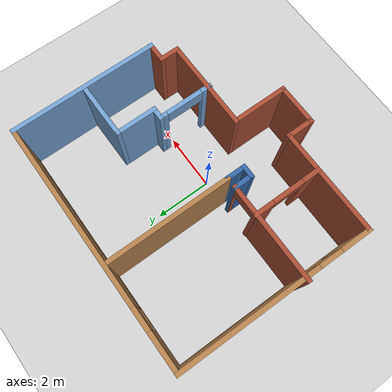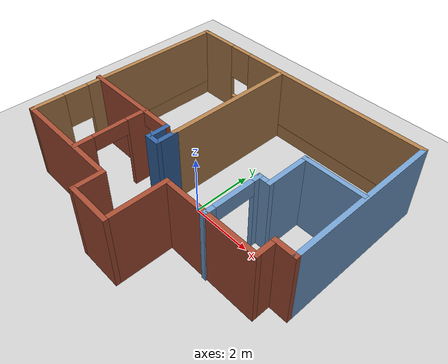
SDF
<sdf version="1.6">
 <world name="default">
  <light name="sun" type="directional">
   <pose>0 0 10 0 -0 0</pose>
   <diffuse>0.8 0.8 0.8 1</diffuse>
   <specular>0.2 0.2 0.2 1</specular>
   <attenuation>
    <range>1000</range>
    <constant>0.9</constant>
    <linear>0.01</linear>
    <quadratic>0.001</quadratic>
   </attenuation>
   <direction>-0.5 0.1 -0.9</direction>
  </light>
  <model name="ground_plane">
   <static>1</static>
   <link name="link">
    <collision name="collision">
     <geometry><plane><normal>0 0 1</normal><size>100 100</size></plane></geometry>
     <surface><friction><ode><mu>100</mu><mu2>50</mu2></ode></friction></surface>
    </collision>
    <visual name="visual">
     <cast_shadows>0</cast_shadows>
     <geometry><plane><normal>0 0 1</normal><size>100 100</size></plane></geometry>
     <material>
      <script><uri>file://media/materials/scripts/gazebo.material</uri><name>Gazebo/Grey</name></script>
     </material>
    </visual>
   </link>
  </model>
  <gravity>0 0 -9.8</gravity>
  <magnetic_field>6e-06 2.3e-05 -4.2e-05</magnetic_field>
  <atmosphere type="adiabatic"/>
  <physics name="default_physics" default="0" type="ode">
   <max_step_size>0.001</max_step_size>
   <real_time_factor>1</real_time_factor>
   <real_time_update_rate>1000</real_time_update_rate>
  </physics>
  <scene><ambient>0.4 0.4 0.4 1</ambient><background>0.7 0.7 0.7 1</background><shadows>1</shadows></scene>
  <audio><device>default</device></audio>
  <spherical_coordinates>
   <surface_model>EARTH_WGS84</surface_model>
   <latitude_deg>0</latitude_deg>
   <longitude_deg>0</longitude_deg>
   <elevation>0</elevation>
   <heading_deg>0</heading_deg>
  </spherical_coordinates>
  <model name="myworld">
   <pose>-0.172435 0.569542 0 0 -0 0</pose>
   <link name="Wall_0">
    <pose>0.068943 3.77472 0 0 -0 0</pose>
    <visual name="Wall_0_Visual_0">
     <pose>-3.66779 0 1.25 0 -0 0</pose>
     <geometry><box><size>1.41442 0.15 2.5</size></box></geometry>
     <material>
      <script><uri>file://media/materials/scripts/gazebo.material</uri><name>Gazebo/Wood</name></script>
      <ambient>1 1 1 1</ambient>
     </material>
     <meta><layer>0</layer></meta>
    </visual>
    <collision name="Wall_0_Collision_0">
     <geometry><box><size>1.41442 0.15 2.5</size></box></geometry>
     <pose>-3.66779 0 1.25 0 -0 0</pose>
    </collision>
    <visual name="Wall_0_Visual_1">
     <pose>0.707209 0 0.25 0 -0 0</pose>
     <geometry><box><size>7.33558 0.15 0.5</size></box></geometry>
     <material>
      <script><uri>file://media/materials/scripts/gazebo.material</uri><name>Gazebo/Wood</name></script>
      <ambient>1 1 1 1</ambient>
     </material>
     <meta><layer>0</layer></meta>
    </visual>
    <collision name="Wall_0_Collision_1">
     <geometry><box><size>7.33558 0.15 0.5</size></box></geometry>
     <pose>0.707209 0 0.25 0 -0 0</pose>
    </collision>
    <visual name="Wall_0_Visual_2">
     <pose>1.10721 0 1.5 0 -0 0</pose>
     <geometry><box><size>6.53558 0.15 2</size></box></geometry>
     <material>
      <script><uri>file://media/materials/scripts/gazebo.material</uri><name>Gazebo/Wood</name></script>
      <ambient>1 1 1 1</ambient>
     </material>
     <meta><layer>0</layer></meta>
    </visual>
    <collision name="Wall_0_Collision_2">
     <geometry><box><size>6.53558 0.15 2</size></box></geometry>
     <pose>1.10721 0 1.5 0 -0 0</pose>
    </collision>
    <visual name="Wall_0_Visual_3">
     <pose>-2.56058 0 1.9 0 -0 0</pose>
     <geometry><box><size>0.8 0.15 1.2</size></box></geometry>
     <material>
      <script><uri>file://media/materials/scripts/gazebo.material</uri><name>Gazebo/Wood</name></script>
      <ambient>1 1 1 1</ambient>
     </material>
     <meta><layer>0</layer></meta>
    </visual>
    <collision name="Wall_0_Collision_3">
     <geometry><box><size>0.8 0.15 1.2</size></box></geometry>
     <pose>-2.56058 0 1.9 0 -0 0</pose>
    </collision>
   </link>
   <link name="Wall_11">
    <collision name="Wall_11_Collision">
     <geometry><box><size>4.5 0.15 2.5</size></box></geometry>
     <pose>0 0 1.25 0 -0 0</pose>
    </collision>
    <visual name="Wall_11_Visual">
     <pose>0 0 1.25 0 -0 0</pose>
     <geometry><box><size>4.5 0.15 2.5</size></box></geometry>
     <material>
      <script><uri>file://media/materials/scripts/gazebo.material</uri><name>Gazebo/Wood</name></script>
      <ambient>1 1 1 1</ambient>
     </material>
     <meta><layer>0</layer></meta>
    </visual>
    <pose>-0.668944 1.57659 0 0 -0 -1.5708</pose>
   </link>
   <link name="Wall_12">
    <collision name="Wall_12_Collision">
     <geometry><box><size>0.75 0.15 2.5</size></box></geometry>
     <pose>0 0 1.25 0 -0 0</pose>
    </collision>
    <visual name="Wall_12_Visual">
     <pose>0 0 1.25 0 -0 0</pose>
     <geometry><box><size>0.75 0.15 2.5</size></box></geometry>
     <material>
      <script><uri>file://media/materials/scripts/gazebo.material</uri><name>Gazebo/Grey</name></script>
      <ambient>0.203922 0.396078 0.643137 1</ambient>
     </material>
     <meta><layer>0</layer></meta>
    </visual>
    <pose>-0.668944 -0.898409 0 0 -0 -1.5708</pose>
   </link>
   <link name="Wall_13">
    <collision name="Wall_13_Collision">
     <geometry><box><size>0.5 0.15 2.5</size></box></geometry>
     <pose>0 0 1.25 0 -0 0</pose>
    </collision>
    <visual name="Wall_13_Visual">
     <pose>0 0 1.25 0 -0 0</pose>
     <geometry><box><size>0.5 0.15 2.5</size></box></geometry>
     <material>
      <script><uri>file://media/materials/scripts/gazebo.material</uri><name>Gazebo/Grey</name></script>
      <ambient>0.203922 0.396078 0.643137 1</ambient>
     </material>
     <meta><layer>0</layer></meta>
    </visual>
    <pose>-0.843944 -1.19841 0 0 -0 3.14159</pose>
   </link>
   <link name="Wall_14">
    <collision name="Wall_14_Collision">
     <geometry><box><size>0.75 0.15 2.5</size></box></geometry>
     <pose>0 0 1.25 0 -0 0</pose>
    </collision>
    <visual name="Wall_14_Visual">
     <pose>0 0 1.25 0 -0 0</pose>
     <geometry><box><size>0.75 0.15 2.5</size></box></geometry>
     <material>
      <script><uri>file://media/materials/scripts/gazebo.material</uri><name>Gazebo/Grey</name></script>
      <ambient>0.203922 0.396078 0.643137 1</ambient>
     </material>
     <meta><layer>0</layer></meta>
    </visual>
    <pose>-1.01894 -0.898409 0 0 -0 1.5708</pose>
   </link>
   <link name="Wall_15">
    <pose>-2.69394 -0.598409 0 0 -0 3.14159</pose>
    <visual name="Wall_15_Visual_0">
     <pose>-1.67182 0 1.25 0 -0 0</pose>
     <geometry><box><size>0.156369 0.15 2.5</size></box></geometry>
     <material>
      <script><uri>file://media/materials/scripts/gazebo.material</uri><name>Gazebo/Bricks</name></script>
      <ambient>1 1 1 1</ambient>
     </material>
     <meta><layer>0</layer></meta>
    </visual>
    <collision name="Wall_15_Collision_0">
     <geometry><box><size>0.156369 0.15 2.5</size></box></geometry>
     <pose>-1.67182 0 1.25 0 -0 0</pose>
    </collision>
    <visual name="Wall_15_Visual_1">
     <pose>0.528185 0 1.25 0 -0 0</pose>
     <geometry><box><size>2.44363 0.15 2.5</size></box></geometry>
     <material>
      <script><uri>file://media/materials/scripts/gazebo.material</uri><name>Gazebo/Bricks</name></script>
      <ambient>1 1 1 1</ambient>
     </material>
     <meta><layer>0</layer></meta>
    </visual>
    <collision name="Wall_15_Collision_1">
     <geometry><box><size>2.44363 0.15 2.5</size></box></geometry>
     <pose>0.528185 0 1.25 0 -0 0</pose>
    </collision>
    <visual name="Wall_15_Visual_2">
     <pose>-1.14363 0 2.25 0 -0 0</pose>
     <geometry><box><size>0.9 0.15 0.5</size></box></geometry>
     <material>
      <script><uri>file://media/materials/scripts/gazebo.material</uri><name>Gazebo/Bricks</name></script>
      <ambient>1 1 1 1</ambient>
     </material>
     <meta><layer>0</layer></meta>
    </visual>
    <collision name="Wall_15_Collision_2">
     <geometry><box><size>0.9 0.15 0.5</size></box></geometry>
     <pose>-1.14363 0 2.25 0 -0 0</pose>
    </collision>
   </link>
   <link name="Wall_17">
    <pose>-2.03365 -1.74883 0 0 -0 -1.5708</pose>
    <visual name="Wall_17_Visual_0">
     <pose>-0.882609 0 1.25 0 -0 0</pose>
     <geometry><box><size>0.734782 0.15 2.5</size></box></geometry>
     <material>
      <script><uri>file://media/materials/scripts/gazebo.material</uri><name>Gazebo/Bricks</name></script>
      <ambient>1 1 1 1</ambient>
     </material>
     <meta><layer>0</layer></meta>
    </visual>
    <collision name="Wall_17_Collision_0">
     <geometry><box><size>0.734782 0.15 2.5</size></box></geometry>
     <pose>-0.882609 0 1.25 0 -0 0</pose>
    </collision>
    <visual name="Wall_17_Visual_1">
     <pose>0.921479 0 1.25 0 -0 0</pose>
     <geometry><box><size>0.657042 0.15 2.5</size></box></geometry>
     <material>
      <script><uri>file://media/materials/scripts/gazebo.material</uri><name>Gazebo/Bricks</name></script>
      <ambient>1 1 1 1</ambient>
     </material>
     <meta><layer>0</layer></meta>
    </visual>
    <collision name="Wall_17_Collision_1">
     <geometry><box><size>0.657042 0.15 2.5</size></box></geometry>
     <pose>0.921479 0 1.25 0 -0 0</pose>
    </collision>
    <visual name="Wall_17_Visual_2">
     <pose>0.03887 0 2.25 0 -0 0</pose>
     <geometry><box><size>1.10817 0.15 0.5</size></box></geometry>
     <material>
      <script><uri>file://media/materials/scripts/gazebo.material</uri><name>Gazebo/Bricks</name></script>
      <ambient>1 1 1 1</ambient>
     </material>
     <meta><layer>0</layer></meta>
    </visual>
    <collision name="Wall_17_Collision_2">
     <geometry><box><size>1.10817 0.15 0.5</size></box></geometry>
     <pose>0.03887 0 2.25 0 -0 0</pose>
    </collision>
   </link>
   <link name="Wall_19">
    <collision name="Wall_19_Collision">
     <geometry><box><size>2 0.15 2.5</size></box></geometry>
     <pose>0 0 1.25 0 -0 0</pose>
    </collision>
    <visual name="Wall_19_Visual">
     <pose>0 0 1.25 0 -0 0</pose>
     <geometry><box><size>2 0.15 2.5</size></box></geometry>
     <material>
      <script><uri>file://media/materials/scripts/gazebo.material</uri><name>Gazebo/Grey</name></script>
      <ambient>0.447059 0.623529 0.811765 1</ambient>
     </material>
     <meta><layer>0</layer></meta>
    </visual>
    <pose>3.37914 1.23036 0 0 -0 3.14159</pose>
   </link>
   <link name="Wall_2">
    <collision name="Wall_2_Collision">
     <geometry><box><size>0.75 0.15 2.5</size></box></geometry>
     <pose>0 0 1.25 0 -0 0</pose>
    </collision>
    <visual name="Wall_2_Visual">
     <pose>0 0 1.25 0 -0 0</pose>
     <geometry><box><size>0.75 0.15 2.5</size></box></geometry>
     <material>
      <script><uri>file://media/materials/scripts/gazebo.material</uri><name>Gazebo/Bricks</name></script>
      <ambient>1 1 1 1</ambient>
     </material>
     <meta><layer>0</layer></meta>
    </visual>
    <pose>4.06894 -1.32528 0 0 -0 3.14159</pose>
   </link>
   <link name="Wall_20">
    <collision name="Wall_20_Collision">
     <geometry><box><size>1.5 0.15 2.5</size></box></geometry>
     <pose>0 0 1.25 0 -0 0</pose>
    </collision>
    <visual name="Wall_20_Visual">
     <pose>0 0 1.25 0 -0 0</pose>
     <geometry><box><size>1.5 0.15 2.5</size></box></geometry>
     <material>
      <script><uri>file://media/materials/scripts/gazebo.material</uri><name>Gazebo/Grey</name></script>
      <ambient>0.447059 0.623529 0.811765 1</ambient>
     </material>
     <meta><layer>0</layer></meta>
    </visual>
    <pose>2.45414 0.555354 0 0 -0 -1.5708</pose>
   </link>
   <link name="Wall_21">
    <collision name="Wall_21_Collision">
     <geometry><box><size>0.5 0.15 2.5</size></box></geometry>
     <pose>0 0 1.25 0 -0 0</pose>
    </collision>
    <visual name="Wall_21_Visual">
     <pose>0 0 1.25 0 -0 0</pose>
     <geometry><box><size>0.5 0.15 2.5</size></box></geometry>
     <material>
      <script><uri>file://media/materials/scripts/gazebo.material</uri><name>Gazebo/Grey</name></script>
      <ambient>0.447059 0.623529 0.811765 1</ambient>
     </material>
     <meta><layer>0</layer></meta>
    </visual>
    <pose>2.27914 -0.119646 0 0 -0 3.14159</pose>
   </link>
   <link name="Wall_23">
    <pose>2.10414 -1.04465 0 0 -0 -1.5708</pose>
    <visual name="Wall_23_Visual_0">
     <pose>-0.840708 0 1.25 0 -0 0</pose>
     <geometry><box><size>0.318585 0.15 2.5</size></box></geometry>
     <material>
      <script><uri>file://media/materials/scripts/gazebo.material</uri><name>Gazebo/Grey</name></script>
      <ambient>0.447059 0.623529 0.811765 1</ambient>
     </material>
     <meta><layer>0</layer></meta>
    </visual>
    <collision name="Wall_23_Collision_0">
     <geometry><box><size>0.318585 0.15 2.5</size></box></geometry>
     <pose>-0.840708 0 1.25 0 -0 0</pose>
    </collision>
    <visual name="Wall_23_Visual_1">
     <pose>0.807006 0 1.25 0 -0 0</pose>
     <geometry><box><size>0.385988 0.15 2.5</size></box></geometry>
     <material>
      <script><uri>file://media/materials/scripts/gazebo.material</uri><name>Gazebo/Grey</name></script>
      <ambient>0.447059 0.623529 0.811765 1</ambient>
     </material>
     <meta><layer>0</layer></meta>
    </visual>
    <collision name="Wall_23_Collision_1">
     <geometry><box><size>0.385988 0.15 2.5</size></box></geometry>
     <pose>0.807006 0 1.25 0 -0 0</pose>
    </collision>
    <visual name="Wall_23_Visual_2">
     <pose>-0.033701 0 2.25 0 -0 0</pose>
     <geometry><box><size>1.29543 0.15 0.5</size></box></geometry>
     <material>
      <script><uri>file://media/materials/scripts/gazebo.material</uri><name>Gazebo/Grey</name></script>
      <ambient>0.447059 0.623529 0.811765 1</ambient>
     </material>
     <meta><layer>0</layer></meta>
    </visual>
    <collision name="Wall_23_Collision_2">
     <geometry><box><size>1.29543 0.15 0.5</size></box></geometry>
     <pose>-0.033701 0 2.25 0 -0 0</pose>
    </collision>
   </link>
   <link name="Wall_25">
    <collision name="Wall_25_Collision">
     <geometry><box><size>5.25 0.15 2.5</size></box></geometry>
     <pose>0 0 1.25 0 -0 0</pose>
    </collision>
    <visual name="Wall_25_Visual">
     <pose>0 0 1.25 0 -0 0</pose>
     <geometry><box><size>5.25 0.15 2.5</size></box></geometry>
     <material>
      <script><uri>file://media/materials/scripts/gazebo.material</uri><name>Gazebo/Grey</name></script>
      <ambient>0.447059 0.623529 0.811765 1</ambient>
     </material>
     <meta><layer>0</layer></meta>
    </visual>
    <pose>4.36894 1.22472 0 0 -0 -1.5708</pose>
   </link>
   <link name="Wall_3">
    <collision name="Wall_3_Collision">
     <geometry><box><size>0.75 0.15 2.5</size></box></geometry>
     <pose>0 0 1.25 0 -0 0</pose>
    </collision>
    <visual name="Wall_3_Visual">
     <pose>0 0 1.25 0 -0 0</pose>
     <geometry><box><size>0.75 0.15 2.5</size></box></geometry>
     <material>
      <script><uri>file://media/materials/scripts/gazebo.material</uri><name>Gazebo/Bricks</name></script>
      <ambient>1 1 1 1</ambient>
     </material>
     <meta><layer>0</layer></meta>
    </visual>
    <pose>3.76894 -1.62528 0 0 -0 -1.5708</pose>
   </link>
   <link name="Wall_4">
    <collision name="Wall_4_Collision">
     <geometry><box><size>3.25 0.15 2.5</size></box></geometry>
     <pose>0 0 1.25 0 -0 0</pose>
    </collision>
    <visual name="Wall_4_Visual">
     <pose>0 0 1.25 0 -0 0</pose>
     <geometry><box><size>3.25 0.15 2.5</size></box></geometry>
     <material>
      <script><uri>file://media/materials/scripts/gazebo.material</uri><name>Gazebo/Bricks</name></script>
      <ambient>0.447059 0.623529 0.811765 1</ambient>
     </material>
     <meta><layer>0</layer></meta>
    </visual>
    <pose>2.21894 -1.92528 0 0 -0 3.14159</pose>
   </link>
   <link name="Wall_5">
    <collision name="Wall_5_Collision">
     <geometry><box><size>2 0.15 2.5</size></box></geometry>
     <pose>0 0 1.25 0 -0 0</pose>
    </collision>
    <visual name="Wall_5_Visual">
     <pose>0 0 1.25 0 -0 0</pose>
     <geometry><box><size>2 0.15 2.5</size></box></geometry>
     <material>
      <script><uri>file://media/materials/scripts/gazebo.material</uri><name>Gazebo/Bricks</name></script>
      <ambient>1 1 1 1</ambient>
     </material>
     <meta><layer>0</layer></meta>
    </visual>
    <pose>0.668943 -2.85028 0 0 -0 -1.5708</pose>
   </link>
   <link name="Wall_6">
    <collision name="Wall_6_Collision">
     <geometry><box><size>1.5 0.15 2.5</size></box></geometry>
     <pose>0 0 1.25 0 -0 0</pose>
    </collision>
    <visual name="Wall_6_Visual">
     <pose>0 0 1.25 0 -0 0</pose>
     <geometry><box><size>1.5 0.15 2.5</size></box></geometry>
     <material>
      <script><uri>file://media/materials/scripts/gazebo.material</uri><name>Gazebo/Bricks</name></script>
      <ambient>1 1 1 1</ambient>
     </material>
     <meta><layer>0</layer></meta>
    </visual>
    <pose>-0.006057 -3.77528 0 0 -0 3.14159</pose>
   </link>
   <link name="Wall_7">
    <collision name="Wall_7_Collision">
     <geometry><box><size>1 0.15 2.5</size></box></geometry>
     <pose>0 0 1.25 0 -0 0</pose>
    </collision>
    <visual name="Wall_7_Visual">
     <pose>0 0 1.25 0 -0 0</pose>
     <geometry><box><size>1 0.15 2.5</size></box></geometry>
     <material>
      <script><uri>file://media/materials/scripts/gazebo.material</uri><name>Gazebo/Bricks</name></script>
      <ambient>1 1 1 1</ambient>
     </material>
     <meta><layer>0</layer></meta>
    </visual>
    <pose>-0.681057 -3.35028 0 0 -0 1.5708</pose>
   </link>
   <link name="Wall_8">
    <collision name="Wall_8_Collision">
     <geometry><box><size>3.75 0.15 2.5</size></box></geometry>
     <pose>0 0 1.25 0 -0 0</pose>
    </collision>
    <visual name="Wall_8_Visual">
     <pose>0 0 1.25 0 -0 0</pose>
     <geometry><box><size>3.75 0.15 2.5</size></box></geometry>
     <material>
      <script><uri>file://media/materials/scripts/gazebo.material</uri><name>Gazebo/Bricks</name></script>
      <ambient>1 1 1 1</ambient>
     </material>
     <meta><layer>0</layer></meta>
    </visual>
    <pose>-2.48106 -2.92528 0 0 -0 3.14159</pose>
   </link>
   <link name="Wall_9">
    <pose>-4.25606 0.424721 0 0 -0 1.56333</pose>
    <visual name="Wall_9_Visual_0">
     <pose>-2.8792 0 1.25 0 -0 0</pose>
     <geometry><box><size>1.09178 0.15 2.5</size></box></geometry>
     <material>
      <script><uri>file://media/materials/scripts/gazebo.material</uri><name>Gazebo/Wood</name></script>
      <ambient>1 1 1 1</ambient>
     </material>
     <meta><layer>0</layer></meta>
    </visual>
    <collision name="Wall_9_Collision_0">
     <geometry><box><size>1.09178 0.15 2.5</size></box></geometry>
     <pose>-2.8792 0 1.25 0 -0 0</pose>
    </collision>
    <visual name="Wall_9_Visual_1">
     <pose>0.545889 0 0.25 0 -0 0</pose>
     <geometry><box><size>5.75841 0.15 0.5</size></box></geometry>
     <material>
      <script><uri>file://media/materials/scripts/gazebo.material</uri><name>Gazebo/Wood</name></script>
      <ambient>1 1 1 1</ambient>
     </material>
     <meta><layer>0</layer></meta>
    </visual>
    <collision name="Wall_9_Collision_1">
     <geometry><box><size>5.75841 0.15 0.5</size></box></geometry>
     <pose>0.545889 0 0.25 0 -0 0</pose>
    </collision>
    <visual name="Wall_9_Visual_2">
     <pose>0.945889 0 1.5 0 -0 0</pose>
     <geometry><box><size>4.95841 0.15 2</size></box></geometry>
     <material>
      <script><uri>file://media/materials/scripts/gazebo.material</uri><name>Gazebo/Wood</name></script>
      <ambient>1 1 1 1</ambient>
     </material>
     <meta><layer>0</layer></meta>
    </visual>
    <collision name="Wall_9_Collision_2">
     <geometry><box><size>4.95841 0.15 2</size></box></geometry>
     <pose>0.945889 0 1.5 0 -0 0</pose>
    </collision>
    <visual name="Wall_9_Visual_3">
     <pose>-1.93332 0 1.9 0 -0 0</pose>
     <geometry><box><size>0.8 0.15 1.2</size></box></geometry>
     <material>
      <script><uri>file://media/materials/scripts/gazebo.material</uri><name>Gazebo/Wood</name></script>
      <ambient>1 1 1 1</ambient>
     </material>
     <meta><layer>0</layer></meta>
    </visual>
    <collision name="Wall_9_Collision_3">
     <geometry><box><size>0.8 0.15 1.2</size></box></geometry>
     <pose>-1.93332 0 1.9 0 -0 0</pose>
    </collision>
   </link>
   <static>1</static>
  </model>
 </world>
</sdf>
